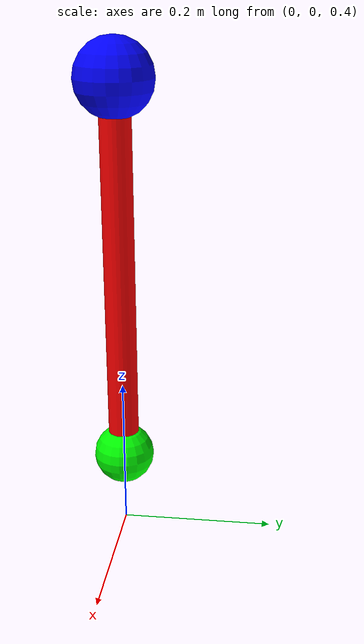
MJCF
<mujoco model="inverted_pendulum">
    <compiler coordinate="local" inertiafromgeom="true"/>
    <option timestep="0.002" gravity="0 0 -9.81"/>

    <!-- Scene visual styles and textures -->
    <asset>
        <texture name="grid" type="2d" builtin="checker" rgb1=".1 .2 .3" rgb2=".2 .3 .4" width="512" height="512"/>
        <material name="grid_mat" texture="grid" texrepeat="1 1"/>
    </asset>

    <worldbody>
        <!-- Static Ground Floor -->
        <geom name="floor" type="plane" size="0 0 .25" material="grid_mat"/>
        <light directional="false" diffuse=".8 .8 .8" specular="0.3 0.3 0.3" pos="0 0 4" dir="0 0 -1"/>

        <!-- The Pendulum Base Anchor -->
        <body name="base" pos="0 0 1.0">
            <geom name="base_geom" type="sphere" size="0.05" rgba="0 0 1 1"/>

            <!-- Rotating Arm Segment -->
            <body name="arm" pos="0 0 0">
                <joint name="pin_joint" type="hinge" axis="0 1 0" pos="0 0 0"/>
                <geom name="arm_cylinder" type="cylinder" fromto="0 0 0 0 0 -0.5" size="0.02" rgba="1 0 0 1"/>
                <!-- End Effector Mass -->
                <body name="tip" pos="0 0 -0.5">
                    <geom name="tip_bob" type="sphere" size="0.04" rgba="0 1 0 1"/>
                </body>
            </body>
        </body>
    </worldbody>

    <!-- Motor input channel to manipulate the joint directly -->
    <actuator>
        <motor name="torque_motor" joint="pin_joint" gear="1.0" ctrlrange="-10 10"/>
    </actuator>
</mujoco>
